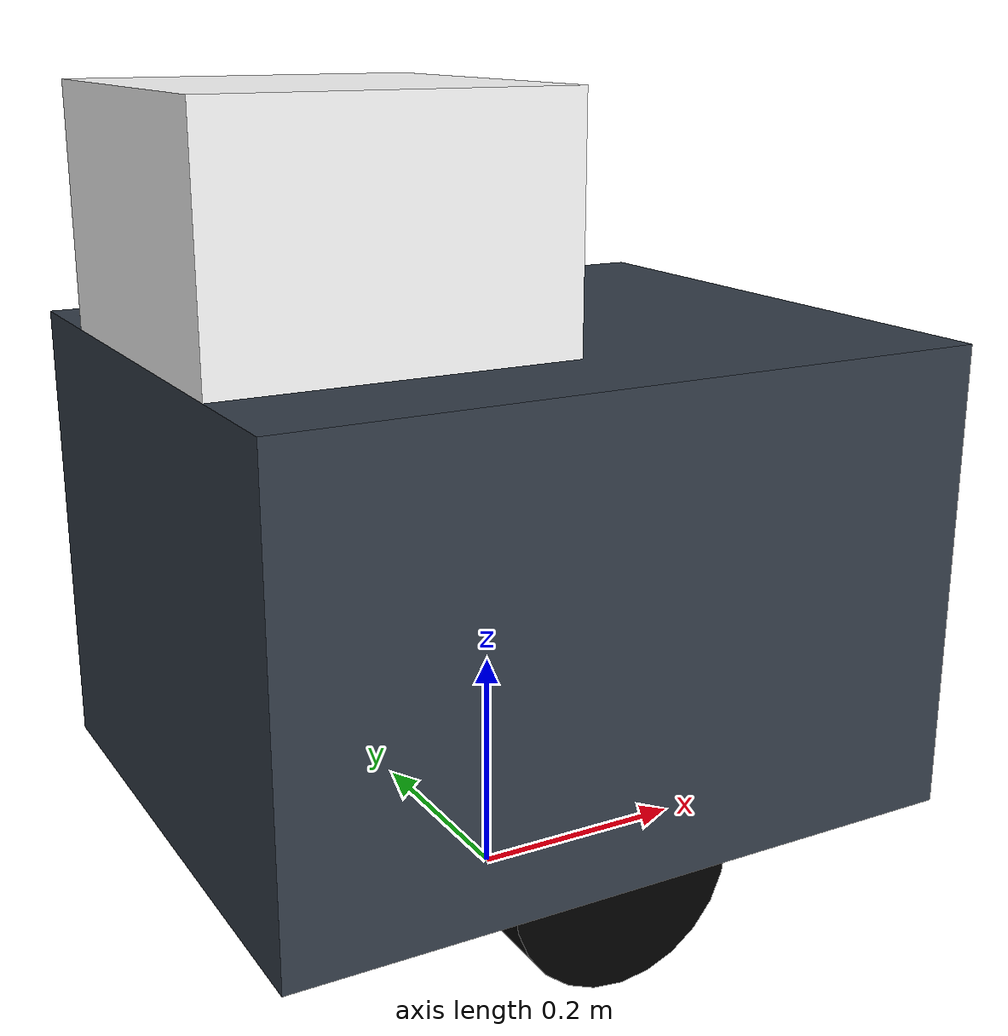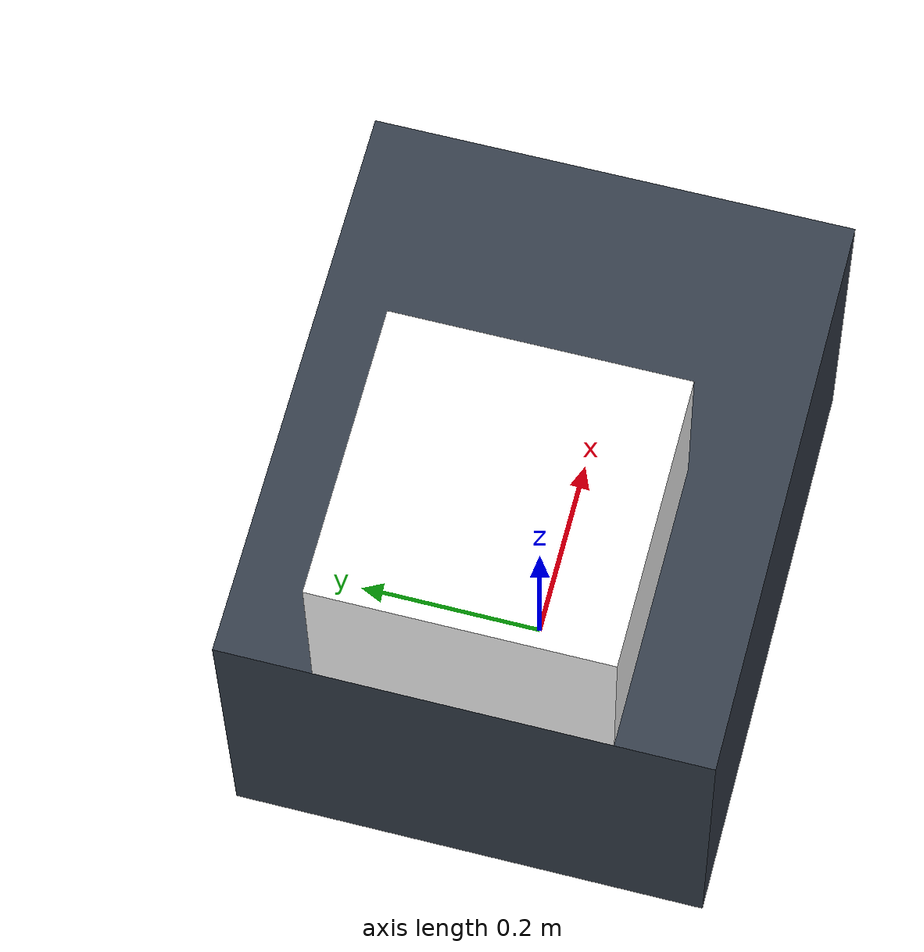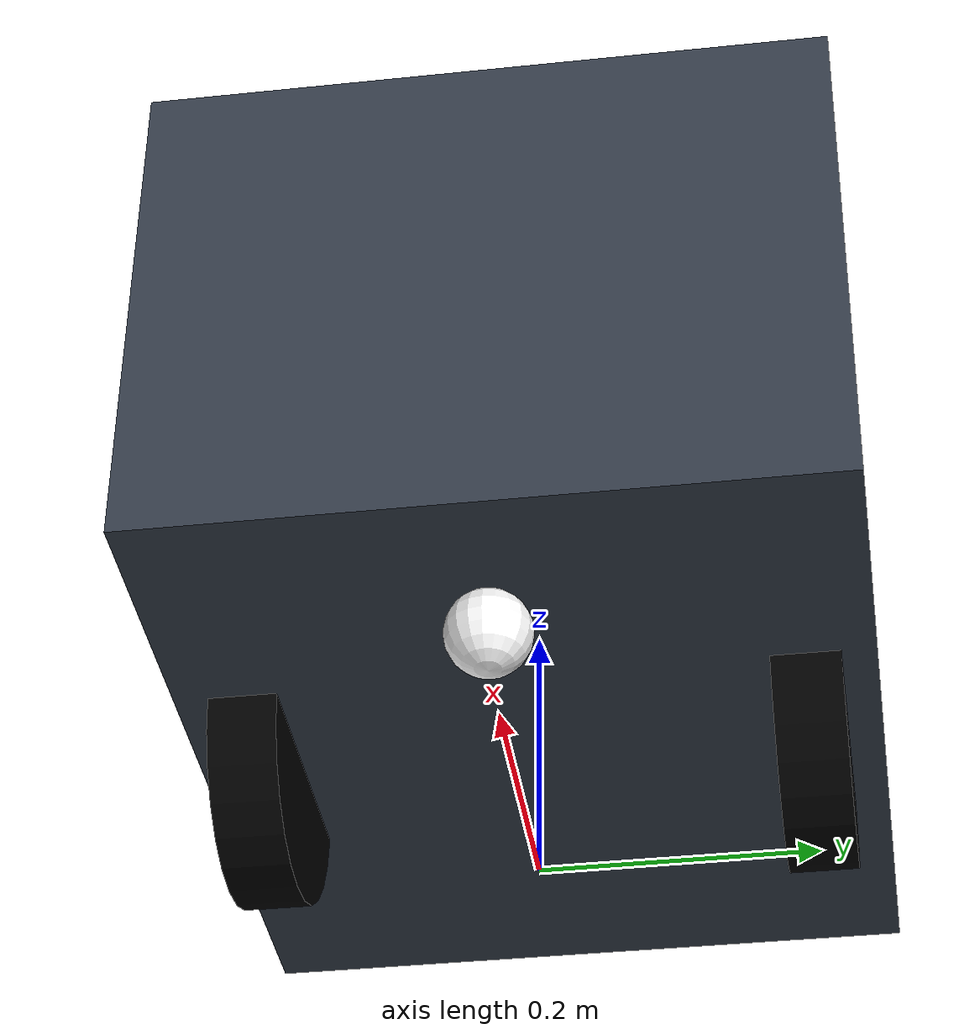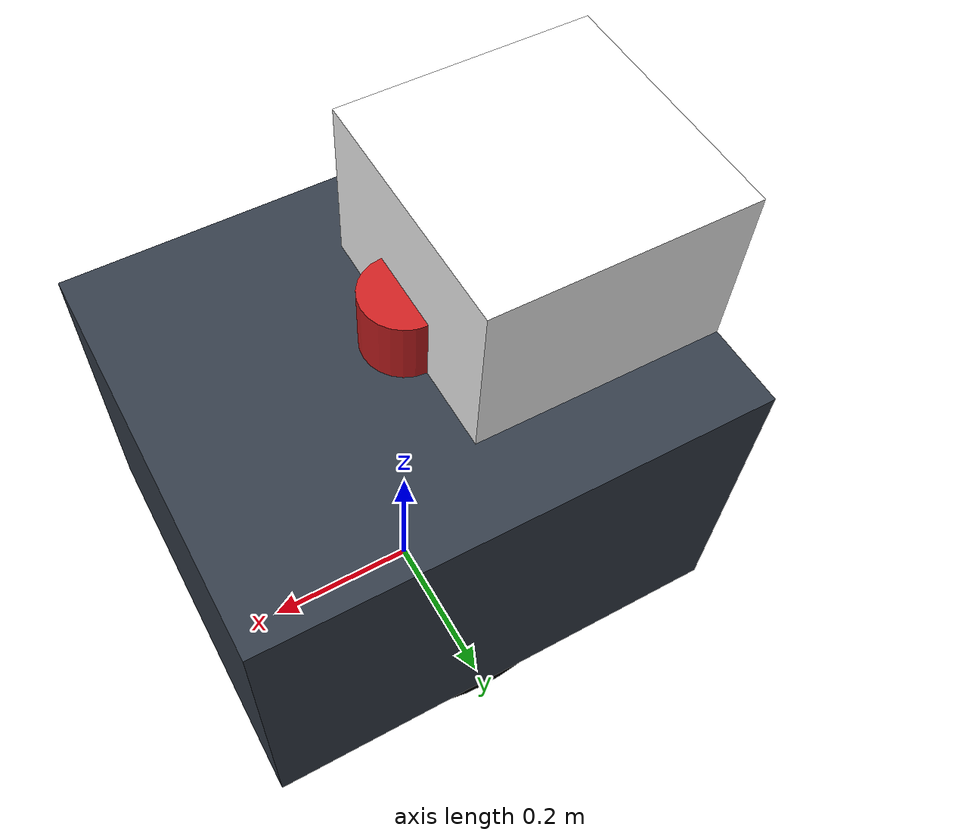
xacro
<?xml version="1.0"?>
<robot xmlns:xacro="http://www.ros.org/wiki/xacro" name="delivery_robot">

  <!-- 매개변수 정의 -->
  <xacro:property name="robot_mass" value="25.0"/>  <!-- 25kg -->
  <xacro:property name="wheel_radius" value="0.1"/>  <!-- 바퀴 반지름 10cm -->
  <xacro:property name="wheel_width" value="0.05"/>
  <xacro:property name="wheel_base" value="0.4"/>   <!-- 바퀴 간격 -->
  <xacro:property name="chassis_length" value="0.6"/>
  <xacro:property name="chassis_width" value="0.5"/>
  <xacro:property name="chassis_height" value="0.4"/>

  <!-- 재료 정의 -->
  <xacro:include filename="$(find delivery_robot_description)/urdf/materials.xacro"/>

  <!-- 베이스 링크 -->
  <link name="base_link"/>

  <!-- 베이스 풋프린트 (바닥에 투영된 로봇의 기준점) -->
  <link name="base_footprint"/>

  <joint name="base_footprint_joint" type="fixed">
    <parent link="base_footprint"/>
    <child link="base_link"/>
    <origin xyz="0 0 ${wheel_radius}" rpy="0 0 0"/>
  </joint>

  <!-- 섀시 (메인 몸체) -->
  <link name="chassis">
    <visual>
      <origin xyz="0 0 0" rpy="0 0 0"/>
      <geometry>
        <box size="${chassis_length} ${chassis_width} ${chassis_height}"/>
      </geometry>
      <material name="blue"/>
    </visual>

    <collision>
      <origin xyz="0 0 0" rpy="0 0 0"/>
      <geometry>
        <box size="${chassis_length} ${chassis_width} ${chassis_height}"/>
      </geometry>
    </collision>

    <inertial>
      <origin xyz="0 0 0" rpy="0 0 0"/>
      <mass value="${robot_mass}"/>
      <inertia ixx="${robot_mass * (chassis_width*chassis_width + chassis_height*chassis_height) / 12.0}"
               iyy="${robot_mass * (chassis_length*chassis_length + chassis_height*chassis_height) / 12.0}"
               izz="${robot_mass * (chassis_length*chassis_length + chassis_width*chassis_width) / 12.0}"
               ixy="0" ixz="0" iyz="0"/>
    </inertial>
  </link>

  <joint name="base_chassis_joint" type="fixed">
    <parent link="base_link"/>
    <child link="chassis"/>
    <origin xyz="0 0 ${chassis_height/2}" rpy="0 0 0"/>
  </joint>

  <!-- 바퀴 매크로 -->
  <xacro:macro name="wheel" params="side reflect">
    <link name="${side}_wheel">
      <visual>
        <origin xyz="0 0 0" rpy="${pi/2} 0 0"/>
        <geometry>
          <cylinder radius="${wheel_radius}" length="${wheel_width}"/>
        </geometry>
        <material name="black"/>
      </visual>

      <collision>
        <origin xyz="0 0 0" rpy="${pi/2} 0 0"/>
        <geometry>
          <cylinder radius="${wheel_radius}" length="${wheel_width}"/>
        </geometry>
      </collision>

      <inertial>
        <origin xyz="0 0 0" rpy="${pi/2} 0 0"/>
        <mass value="2.0"/>
        <inertia ixx="0.01" iyy="0.02" izz="0.01" ixy="0" ixz="0" iyz="0"/>
      </inertial>
    </link>

    <joint name="${side}_wheel_joint" type="continuous">
      <parent link="base_link"/>
      <child link="${side}_wheel"/>
      <origin xyz="0 ${reflect * wheel_base/2} 0" rpy="0 0 0"/>
      <axis xyz="0 1 0"/>
    </joint>
  </xacro:macro>

  <!-- 왼쪽/오른쪽 바퀴 생성 -->
  <xacro:wheel side="left" reflect="1"/>
  <xacro:wheel side="right" reflect="-1"/>

  <!-- 캐스터 휠 (앞쪽 지지용) -->
  <link name="front_caster">
    <visual>
      <origin xyz="0 0 0" rpy="0 0 0"/>
      <geometry>
        <sphere radius="0.03"/>
      </geometry>
      <material name="white"/>
    </visual>

    <collision>
      <origin xyz="0 0 0" rpy="0 0 0"/>
      <geometry>
        <sphere radius="0.03"/>
      </geometry>
    </collision>

    <inertial>
      <origin xyz="0 0 0" rpy="0 0 0"/>
      <mass value="0.5"/>
      <inertia ixx="0.001" iyy="0.001" izz="0.001" ixy="0" ixz="0" iyz="0"/>
    </inertial>
  </link>

  <joint name="front_caster_joint" type="fixed">
    <parent link="base_link"/>
    <child link="front_caster"/>
    <origin xyz="${chassis_length/2 - 0.05} 0 -${wheel_radius - 0.03}" rpy="0 0 0"/>
  </joint>

  <!-- 라이다 센서 -->
  <link name="laser">
    <visual>
      <origin xyz="0 0 0" rpy="0 0 0"/>
      <geometry>
        <cylinder radius="0.05" length="0.08"/>
      </geometry>
      <material name="red"/>
    </visual>

    <collision>
      <origin xyz="0 0 0" rpy="0 0 0"/>
      <geometry>
        <cylinder radius="0.05" length="0.08"/>
      </geometry>
    </collision>

    <inertial>
      <origin xyz="0 0 0" rpy="0 0 0"/>
      <mass value="0.5"/>
      <inertia ixx="0.001" iyy="0.001" izz="0.001" ixy="0" ixz="0" iyz="0"/>
    </inertial>
  </link>

  <joint name="laser_joint" type="fixed">
    <parent link="chassis"/>
    <child link="laser"/>
    <origin xyz="0 0 ${chassis_height/2 + 0.04}" rpy="0 0 0"/>
  </joint>

  <!-- IMU 센서 -->
  <link name="imu_link">
    <visual>
      <origin xyz="0 0 0" rpy="0 0 0"/>
      <geometry>
        <box size="0.02 0.02 0.01"/>
      </geometry>
      <material name="green"/>
    </visual>

    <collision>
      <origin xyz="0 0 0" rpy="0 0 0"/>
      <geometry>
        <box size="0.02 0.02 0.01"/>
      </geometry>
    </collision>

    <inertial>
      <origin xyz="0 0 0" rpy="0 0 0"/>
      <mass value="0.01"/>
      <inertia ixx="0.0001" iyy="0.0001" izz="0.0001" ixy="0" ixz="0" iyz="0"/>
    </inertial>
  </link>

  <joint name="imu_joint" type="fixed">
    <parent link="chassis"/>
    <child link="imu_link"/>
    <origin xyz="0 0 0" rpy="0 0 0"/>
  </joint>

  <!-- 카메라 -->
  <link name="camera_link">
    <visual>
      <origin xyz="0 0 0" rpy="0 0 0"/>
      <geometry>
        <box size="0.05 0.08 0.03"/>
      </geometry>
      <material name="black"/>
    </visual>

    <collision>
      <origin xyz="0 0 0" rpy="0 0 0"/>
      <geometry>
        <box size="0.05 0.08 0.03"/>
      </geometry>
    </collision>

    <inertial>
      <origin xyz="0 0 0" rpy="0 0 0"/>
      <mass value="0.1"/>
      <inertia ixx="0.0001" iyy="0.0001" izz="0.0001" ixy="0" ixz="0" iyz="0"/>
    </inertial>
  </link>

  <joint name="camera_joint" type="fixed">
    <parent link="chassis"/>
    <child link="camera_link"/>
    <origin xyz="${chassis_length/2 - 0.05} 0 ${chassis_height/4}" rpy="0 0 0"/>
  </joint>

  <!-- GPS 안테나 -->
  <link name="gps_link">
    <visual>
      <origin xyz="0 0 0" rpy="0 0 0"/>
      <geometry>
        <cylinder radius="0.02" length="0.05"/>
      </geometry>
      <material name="yellow"/>
    </visual>

    <collision>
      <origin xyz="0 0 0" rpy="0 0 0"/>
      <geometry>
        <cylinder radius="0.02" length="0.05"/>
      </geometry>
    </collision>

    <inertial>
      <origin xyz="0 0 0" rpy="0 0 0"/>
      <mass value="0.05"/>
      <inertia ixx="0.0001" iyy="0.0001" izz="0.0001" ixy="0" ixz="0" iyz="0"/>
    </inertial>
  </link>

  <joint name="gps_joint" type="fixed">
    <parent link="chassis"/>
    <child link="gps_link"/>
    <origin xyz="-${chassis_length/4} 0 ${chassis_height/2 + 0.025}" rpy="0 0 0"/>
  </joint>

  <!-- 배송함 (도어 포함) -->
  <link name="delivery_box">
    <visual>
      <origin xyz="0 0 0" rpy="0 0 0"/>
      <geometry>
        <box size="0.3 0.3 0.2"/>
      </geometry>
      <material name="white"/>
    </visual>

    <collision>
      <origin xyz="0 0 0" rpy="0 0 0"/>
      <geometry>
        <box size="0.3 0.3 0.2"/>
      </geometry>
    </collision>

    <inertial>
      <origin xyz="0 0 0" rpy="0 0 0"/>
      <mass value="2.0"/>
      <inertia ixx="0.1" iyy="0.1" izz="0.1" ixy="0" ixz="0" iyz="0"/>
    </inertial>
  </link>

  <joint name="delivery_box_joint" type="fixed">
    <parent link="chassis"/>
    <child link="delivery_box"/>
    <origin xyz="-${chassis_length/4} 0 ${chassis_height/2 + 0.1}" rpy="0 0 0"/>
  </joint>

  <!-- Gazebo 플러그인 -->
  <gazebo>
    <plugin name="differential_drive_controller" filename="libgazebo_ros_diff_drive.so">
      <update_rate>30</update_rate>
      <left_joint>left_wheel_joint</left_joint>
      <right_joint>right_wheel_joint</right_joint>
      <wheel_separation>${wheel_base}</wheel_separation>
      <wheel_diameter>${2*wheel_radius}</wheel_diameter>
      <max_wheel_torque>20</max_wheel_torque>
      <max_wheel_acceleration>1.0</max_wheel_acceleration>
      <command_topic>cmd_vel</command_topic>
      <publish_odom>true</publish_odom>
      <publish_odom_tf>true</publish_odom_tf>
      <publish_wheel_tf>true</publish_wheel_tf>
      <odometry_topic>wheel_encoder/odom</odometry_topic>
      <odometry_frame>odom</odometry_frame>
      <robot_base_frame>base_link</robot_base_frame>
    </plugin>
  </gazebo>

  <!-- 라이다 센서 플러그인 -->
  <gazebo reference="laser">
    <sensor type="ray" name="hokuyo_sensor">
      <pose>0 0 0 0 0 0</pose>
      <visualize>false</visualize>
      <update_rate>40</update_rate>
      <ray>
        <scan>
          <horizontal>
            <samples>720</samples>
            <resolution>1</resolution>
            <min_angle>-1.570796</min_angle>
            <max_angle>1.570796</max_angle>
          </horizontal>
        </scan>
        <range>
          <min>0.10</min>
          <max>30.0</max>
          <resolution>0.01</resolution>
        </range>
        <noise>
          <type>gaussian</type>
          <mean>0.0</mean>
          <stddev>0.01</stddev>
        </noise>
      </ray>
      <plugin name="gazebo_ros_head_hokuyo_controller" filename="libgazebo_ros_laser.so">
        <topicName>/scan</topicName>
        <frameName>laser</frameName>
      </plugin>
    </sensor>
  </gazebo>

  <!-- IMU 센서 플러그인 -->
  <gazebo reference="imu_link">
    <gravity>true</gravity>
    <sensor name="imu_sensor" type="imu">
      <always_on>true</always_on>
      <update_rate>100</update_rate>
      <visualize>true</visualize>
      <topic>/imu/data</topic>
      <plugin filename="libgazebo_ros_imu_sensor.so" name="imu_plugin">
        <topicName>/imu/data</topicName>
        <bodyName>imu_link</bodyName>
        <updateRateHZ>10.0</updateRateHZ>
        <gaussianNoise>0.0</gaussianNoise>
        <xyzOffset>0 0 0</xyzOffset>
        <rpyOffset>0 0 0</rpyOffset>
        <frameName>imu_link</frameName>
      </plugin>
    </sensor>
  </gazebo>

  <!-- GPS 센서 플러그인 -->
  <gazebo reference="gps_link">
    <sensor name="gps_sensor" type="gps">
      <always_on>true</always_on>
      <update_rate>10</update_rate>
      <plugin filename="libgazebo_ros_gps_sensor.so" name="gps_plugin">
        <topicName>/gps/fix</topicName>
        <frameName>gps_link</frameName>
      </plugin>
    </sensor>
  </gazebo>

  <!-- 카메라 플러그인 -->
  <gazebo reference="camera_link">
    <sensor type="camera" name="camera1">
      <update_rate>30.0</update_rate>
      <camera name="head">
        <horizontal_fov>1.3962634</horizontal_fov>
        <image>
          <width>800</width>
          <height>600</height>
          <format>R8G8B8</format>
        </image>
        <clip>
          <near>0.02</near>
          <far>300</far>
        </clip>
        <noise>
          <type>gaussian</type>
          <mean>0.0</mean>
          <stddev>0.007</stddev>
        </noise>
      </camera>
      <plugin name="camera_controller" filename="libgazebo_ros_camera.so">
        <alwaysOn>true</alwaysOn>
        <updateRate>0.0</updateRate>
        <cameraName>camera</cameraName>
        <imageTopicName>/camera/image_raw</imageTopicName>
        <cameraInfoTopicName>/camera/camera_info</cameraInfoTopicName>
        <frameName>camera_link</frameName>
        <hackBaseline>0.07</hackBaseline>
        <distortionK1>0.0</distortionK1>
        <distortionK2>0.0</distortionK2>
        <distortionK3>0.0</distortionK3>
        <distortionT1>0.0</distortionT1>
        <distortionT2>0.0</distortionT2>
      </plugin>
    </sensor>
  </gazebo>

</robot>

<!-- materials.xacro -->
<robot>
  <!-- 색상 재료 정의 -->

  <material name="black">
    <color rgba="0.0 0.0 0.0 1.0"/>
  </material>

  <material name="blue">
    <color rgba="0.203125 0.23828125 0.28515625 1.0"/>
  </material>

  <material name="green">
    <color rgba="0.0 0.8 0.0 1.0"/>
  </material>

  <material name="grey">
    <color rgba="0.2 0.2 0.2 1.0"/>
  </material>

  <material name="orange">
    <color rgba="1.0 0.423529411765 0.0392156862745 1.0"/>
  </material>

  <material name="brown">
    <color rgba="0.870588235294 0.811764705882 0.764705882353 1.0"/>
  </material>

  <material name="red">
    <color rgba="0.80078125 0.12890625 0.1328125 1.0"/>
  </material>

  <material name="white">
    <color rgba="1.0 1.0 1.0 1.0"/>
  </material>

  <material name="yellow">
    <color rgba="1.0 1.0 0.0 1.0"/>
  </material>

</robot>
